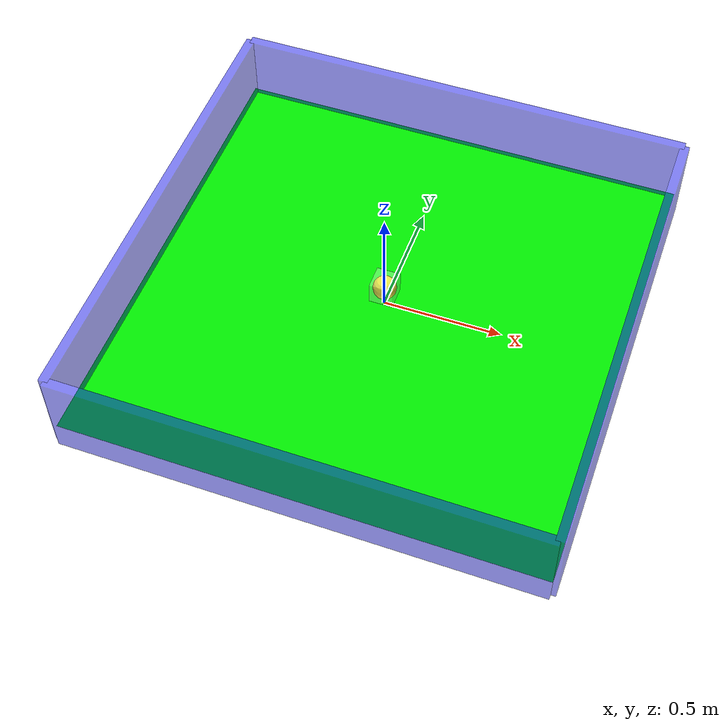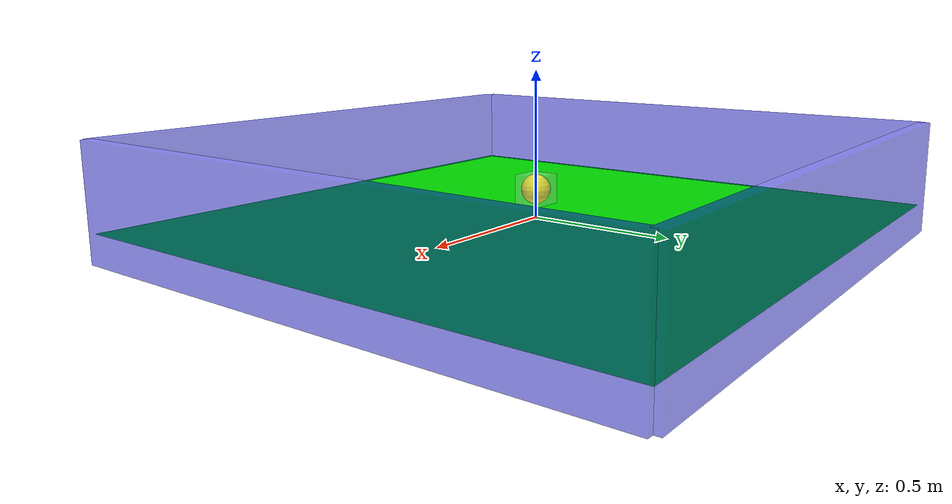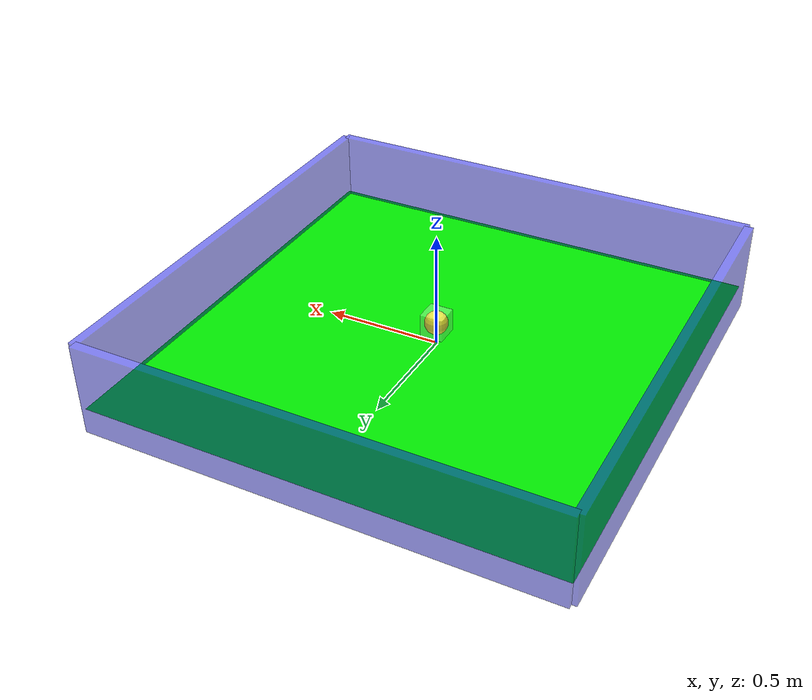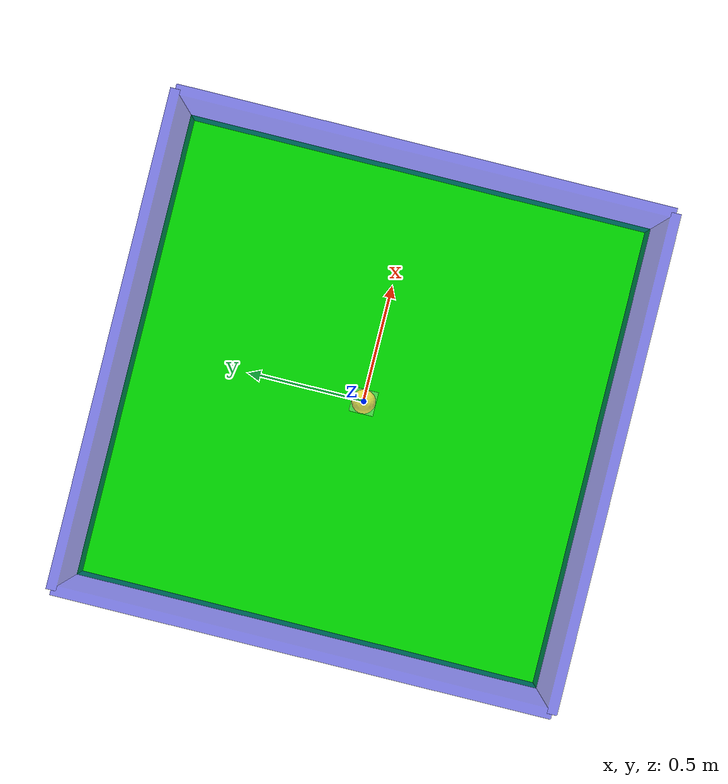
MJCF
<mujoco>
    <default>
        <joint pos="0 0 0" armature="0" limited="true" damping="0.1" />
        <geom pos="0 0 0" rgba="1 1 1 1" contype="1" conaffinity="1" />
        <motor ctrlrange="-1 1" ctrllimited="true" gear="5" />
    </default>

    <worldbody>
        <light diffuse=".5 .5 .5" pos="0 0 10" dir="0 0 -1" />

        <geom type="plane" size="1 1 1" rgba="0 0.9 0 1" />

        <geom type="box" size="1 0.02 0.2" pos="0 1 0.1" rgba="0 0 0.9 0.5" />
        <geom type="box" size="1 0.02 0.2" pos="0 -1 0.1" rgba="0 0 0.9 0.5" />
        <geom type="box" size="0.02 1 0.2" pos="1 0 0.1" rgba="0 0 0.9 0.5" />
        <geom type="box" size="0.02 1 0.2" pos="-1 0 0.1" rgba="0 0 0.9 0.5" />

        <body name="ball" pos="0 0 0.1">
            <geom type="sphere" size="0.05" rgba=".9 .9 0 1" density='0.00001' />
            <joint name="ball_slide_x" type="slide" axis="1 0 0" range="-10 10" damping="0.5" />
            <joint name="ball_slide_y" type="slide" axis="0 1 0" range="-10 10" damping="0.5" />
        </body>

        <body name="goal" pos="0 0 0.1">
            <geom type="box" size="0.05 0.05 0.05" rgba="1 1 1 0.3" density='0.00001' contype="0" conaffinity="0" />
            <joint name="goal_slide_x" type="slide" axis="1 0 0" range="-10 10" damping="0.5" />
            <joint name="goal_slide_y" type="slide" axis="0 1 0" range="-10 10" damping="0.5" />
        </body>
	</worldbody>

	<actuator>
    	<motor joint="ball_slide_x" />
    	<motor joint="ball_slide_y" />
	</actuator>
</mujoco>
